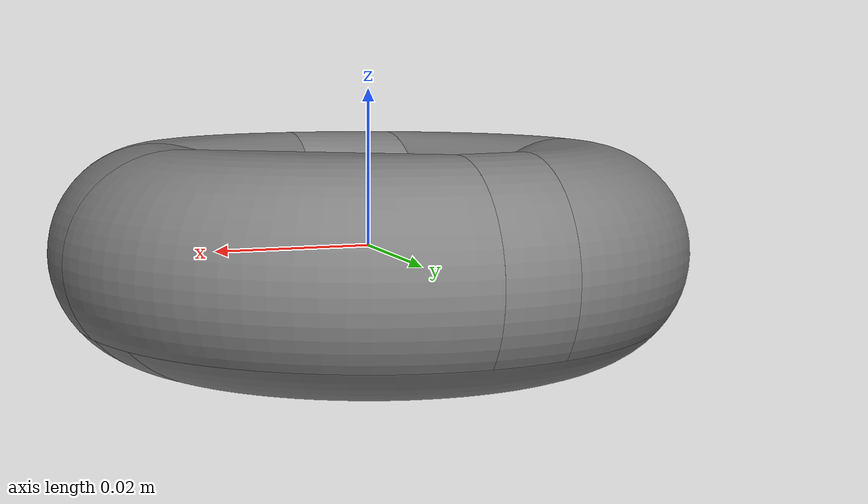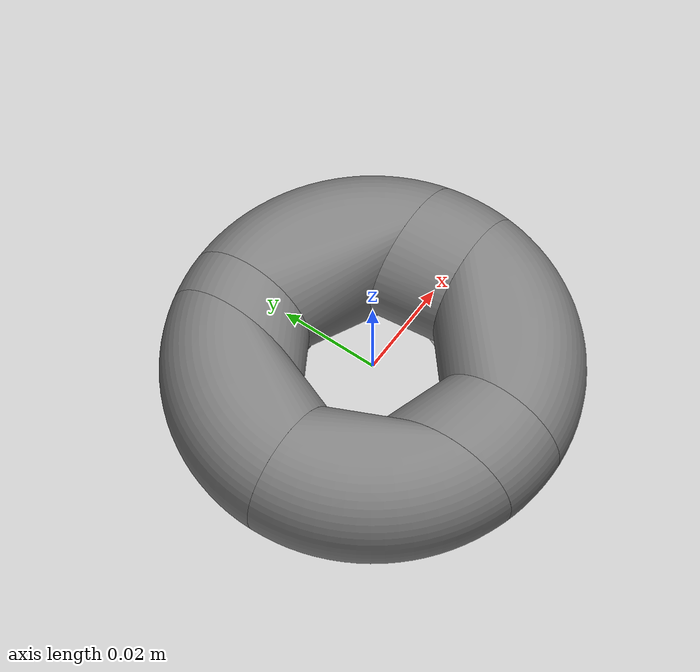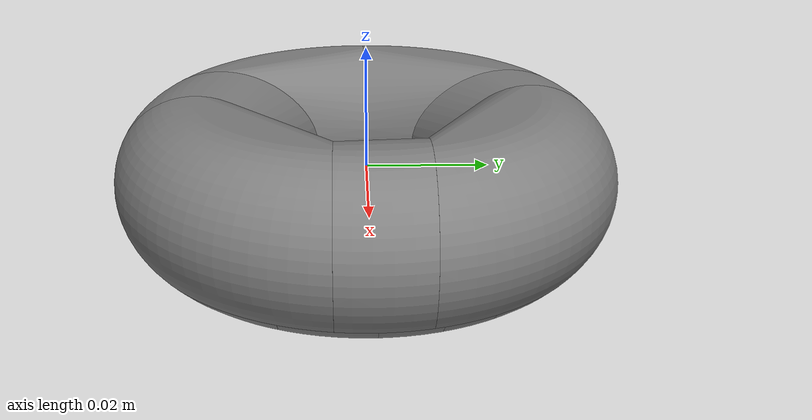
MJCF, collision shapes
<mujoco model="torus_medium">
  <compiler meshdir="."/>

  <asset>
    <mesh name="torus_medium" file="torus_medium.stl"/>
    <mesh name="torus_medium_collision_hull_000" file="torus_medium_collision_hull_000.stl"/>
    <mesh name="torus_medium_collision_hull_001" file="torus_medium_collision_hull_001.stl"/>
    <mesh name="torus_medium_collision_hull_002" file="torus_medium_collision_hull_002.stl"/>
    <mesh name="torus_medium_collision_hull_003" file="torus_medium_collision_hull_003.stl"/>
    <mesh name="torus_medium_collision_hull_004" file="torus_medium_collision_hull_004.stl"/>
    <mesh name="torus_medium_collision_hull_005" file="torus_medium_collision_hull_005.stl"/>
    <mesh name="torus_medium_collision_hull_006" file="torus_medium_collision_hull_006.stl"/>
    <mesh name="torus_medium_collision_hull_007" file="torus_medium_collision_hull_007.stl"/>
    <mesh name="torus_medium_collision_hull_008" file="torus_medium_collision_hull_008.stl"/>
    <mesh name="torus_medium_collision_hull_009" file="torus_medium_collision_hull_009.stl"/>
    <mesh name="torus_medium_collision_hull_010" file="torus_medium_collision_hull_010.stl"/>
    <mesh name="torus_medium_collision_hull_011" file="torus_medium_collision_hull_011.stl"/>
    <mesh name="torus_medium_collision_hull_012" file="torus_medium_collision_hull_012.stl"/>
    <mesh name="torus_medium_collision_hull_013" file="torus_medium_collision_hull_013.stl"/>
    <mesh name="torus_medium_collision_hull_014" file="torus_medium_collision_hull_014.stl"/>
    <mesh name="torus_medium_collision_hull_015" file="torus_medium_collision_hull_015.stl"/>
  </asset>

  <worldbody>
    <body name="object">
      <freejoint name="object_joint"/>
      <geom name="object_visual" type="mesh" mesh="torus_medium"
            contype="0" conaffinity="0" group="2" rgba="0.9 0.9 0.8 1" mass="0"/>
      <geom name="torus_medium_collision_hull_000_collision" type="mesh" mesh="torus_medium_collision_hull_000"
            mass="0.0031" condim="6" friction="1.0 0.002 0.002" priority="1"/>
      <geom name="torus_medium_collision_hull_001_collision" type="mesh" mesh="torus_medium_collision_hull_001"
            mass="0.0031" condim="6" friction="1.0 0.002 0.002" priority="1"/>
      <geom name="torus_medium_collision_hull_002_collision" type="mesh" mesh="torus_medium_collision_hull_002"
            mass="0.0031" condim="6" friction="1.0 0.002 0.002" priority="1"/>
      <geom name="torus_medium_collision_hull_003_collision" type="mesh" mesh="torus_medium_collision_hull_003"
            mass="0.0031" condim="6" friction="1.0 0.002 0.002" priority="1"/>
      <geom name="torus_medium_collision_hull_004_collision" type="mesh" mesh="torus_medium_collision_hull_004"
            mass="0.0031" condim="6" friction="1.0 0.002 0.002" priority="1"/>
      <geom name="torus_medium_collision_hull_005_collision" type="mesh" mesh="torus_medium_collision_hull_005"
            mass="0.0031" condim="6" friction="1.0 0.002 0.002" priority="1"/>
      <geom name="torus_medium_collision_hull_006_collision" type="mesh" mesh="torus_medium_collision_hull_006"
            mass="0.0031" condim="6" friction="1.0 0.002 0.002" priority="1"/>
      <geom name="torus_medium_collision_hull_007_collision" type="mesh" mesh="torus_medium_collision_hull_007"
            mass="0.0031" condim="6" friction="1.0 0.002 0.002" priority="1"/>
      <geom name="torus_medium_collision_hull_008_collision" type="mesh" mesh="torus_medium_collision_hull_008"
            mass="0.0031" condim="6" friction="1.0 0.002 0.002" priority="1"/>
      <geom name="torus_medium_collision_hull_009_collision" type="mesh" mesh="torus_medium_collision_hull_009"
            mass="0.0031" condim="6" friction="1.0 0.002 0.002" priority="1"/>
      <geom name="torus_medium_collision_hull_010_collision" type="mesh" mesh="torus_medium_collision_hull_010"
            mass="0.0031" condim="6" friction="1.0 0.002 0.002" priority="1"/>
      <geom name="torus_medium_collision_hull_011_collision" type="mesh" mesh="torus_medium_collision_hull_011"
            mass="0.0031" condim="6" friction="1.0 0.002 0.002" priority="1"/>
      <geom name="torus_medium_collision_hull_012_collision" type="mesh" mesh="torus_medium_collision_hull_012"
            mass="0.0031" condim="6" friction="1.0 0.002 0.002" priority="1"/>
      <geom name="torus_medium_collision_hull_013_collision" type="mesh" mesh="torus_medium_collision_hull_013"
            mass="0.0031" condim="6" friction="1.0 0.002 0.002" priority="1"/>
      <geom name="torus_medium_collision_hull_014_collision" type="mesh" mesh="torus_medium_collision_hull_014"
            mass="0.0031" condim="6" friction="1.0 0.002 0.002" priority="1"/>
      <geom name="torus_medium_collision_hull_015_collision" type="mesh" mesh="torus_medium_collision_hull_015"
            mass="0.0031" condim="6" friction="1.0 0.002 0.002" priority="1"/>
    </body>
  </worldbody>
</mujoco>
